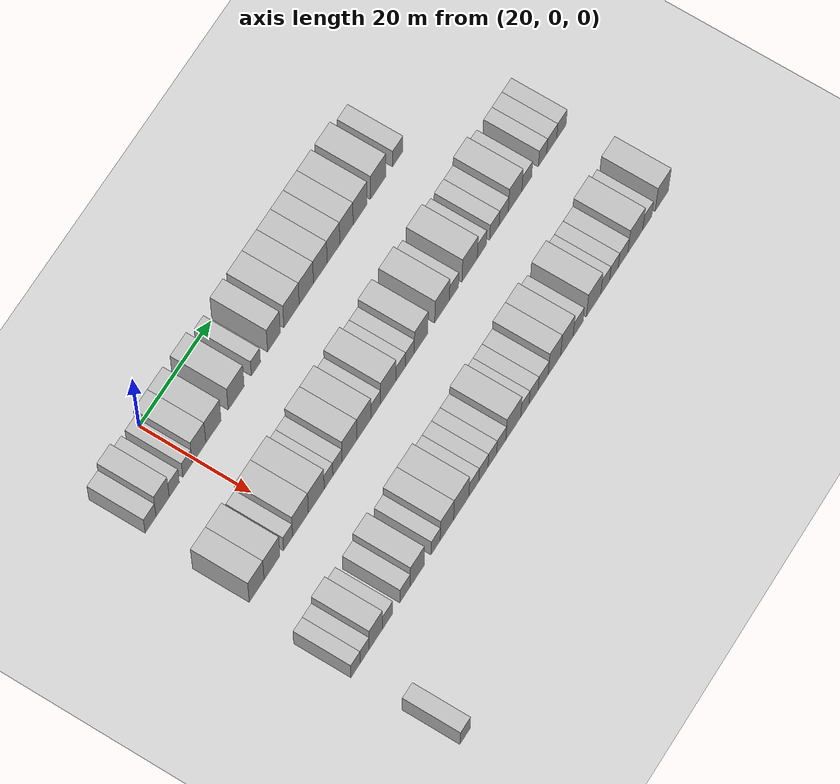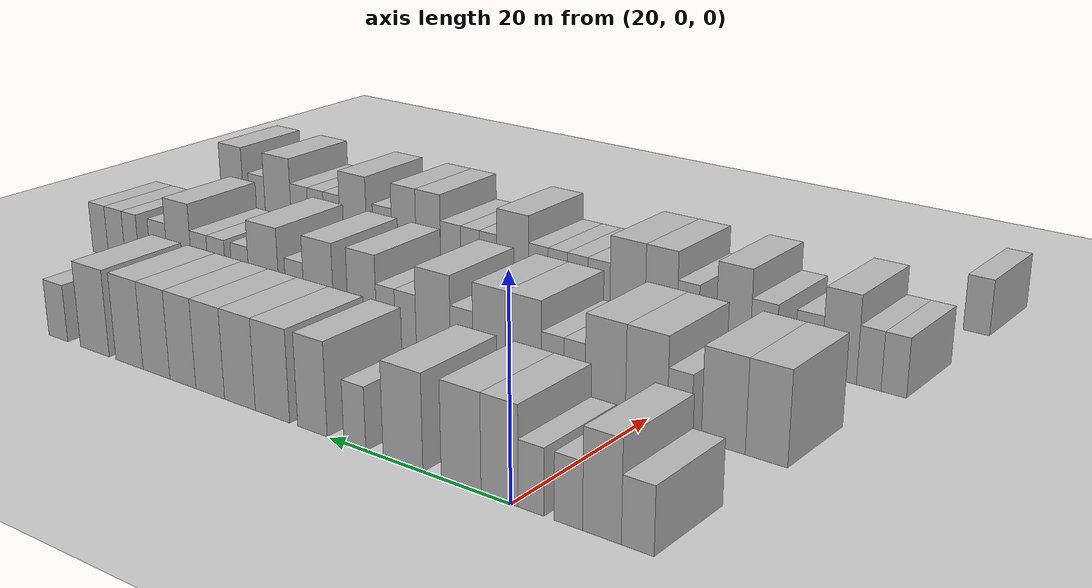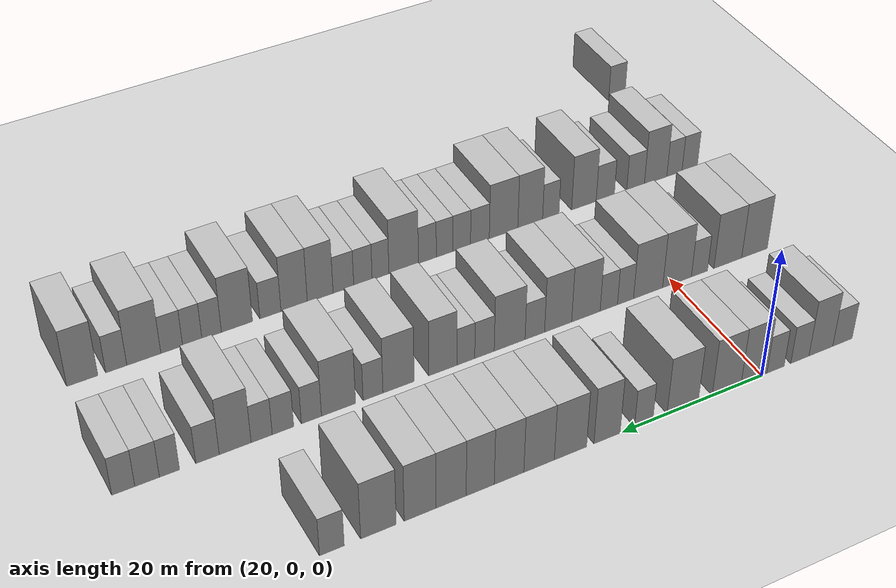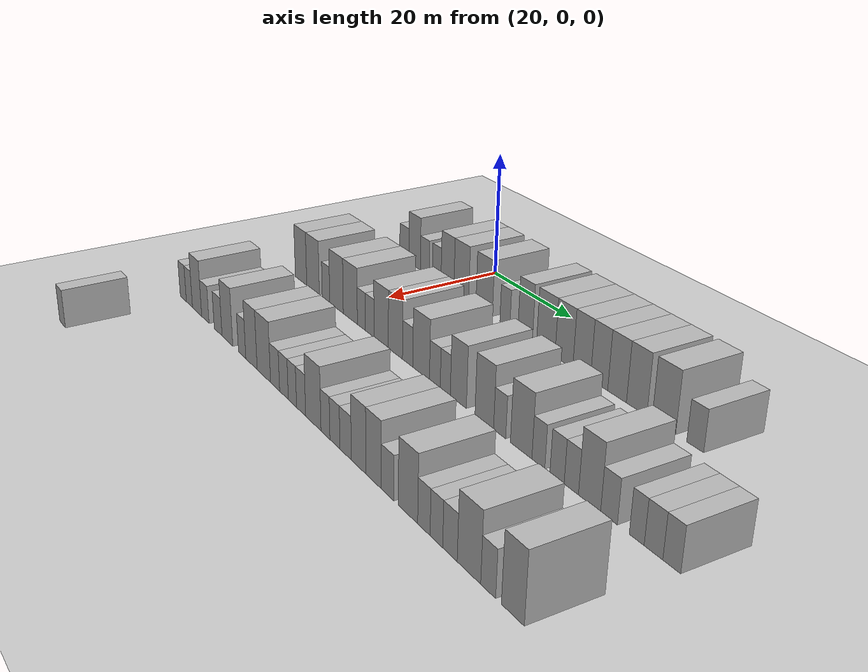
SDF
<sdf version="1.6">
 <world name="default">
  <include><name>ground_plane_1</name><uri>model://HANNAS_ground_plane</uri></include>
  <model name="building_84">
   <static>1</static>
   <pose>25.0000 -12.2381 0 0.000000 0.000000 0.000000</pose>
   <link name="link">
    <pose>0 0 3.00 0 0 0</pose>
    <collision name="collision"><geometry><box><size>10.0000 3.0000 6.0000</size></box></geometry></collision>
    <visual name="visual">
     <cast_shadows>0</cast_shadows>
     <geometry><box><size>10.0000 3.0000 6.0000</size></box></geometry>
     <material>
      <script>
       <uri>model://HANNAS_wall/materials/scripts</uri>
       <uri>model://HANNAS_wall/materials/textures</uri>
       <name>vrc/HANNAS_wall</name>
      </script>
     </material>
    </visual>
   </link>
  </model>
  <model name="building_85">
   <static>1</static>
   <pose>25.0000 -8.9162 0 0.000000 0.000000 0.000000</pose>
   <link name="link">
    <pose>0 0 4.50 0 0 0</pose>
    <collision name="collision"><geometry><box><size>10.0000 3.6439 9.0000</size></box></geometry></collision>
    <visual name="visual">
     <cast_shadows>0</cast_shadows>
     <geometry><box><size>10.0000 3.6439 9.0000</size></box></geometry>
     <material>
      <script>
       <uri>model://HANNAS_wall/materials/scripts</uri>
       <uri>model://HANNAS_wall/materials/textures</uri>
       <name>vrc/HANNAS_wall</name>
      </script>
     </material>
    </visual>
   </link>
  </model>
  <model name="building_86">
   <static>1</static>
   <pose>25.0000 -5.7197 0 0.000000 0.000000 0.000000</pose>
   <link name="link">
    <pose>0 0 3.00 0 0 0</pose>
    <collision name="collision"><geometry><box><size>10.0000 2.7490 6.0000</size></box></geometry></collision>
    <visual name="visual">
     <cast_shadows>0</cast_shadows>
     <geometry><box><size>10.0000 2.7490 6.0000</size></box></geometry>
     <material>
      <script>
       <uri>model://HANNAS_wall/materials/scripts</uri>
       <uri>model://HANNAS_wall/materials/textures</uri>
       <name>vrc/HANNAS_wall</name>
      </script>
     </material>
    </visual>
   </link>
  </model>
  <model name="building_87">
   <static>1</static>
   <pose>25.0000 -2.0507 0 0.000000 0.000000 0.000000</pose>
   <link name="link">
    <pose>0 0 3.00 0 0 0</pose>
    <collision name="collision"><geometry><box><size>10.0000 2.5891 6.0000</size></box></geometry></collision>
    <visual name="visual">
     <cast_shadows>0</cast_shadows>
     <geometry><box><size>10.0000 2.5891 6.0000</size></box></geometry>
     <material>
      <script>
       <uri>model://HANNAS_wall/materials/scripts</uri>
       <uri>model://HANNAS_wall/materials/textures</uri>
       <name>vrc/HANNAS_wall</name>
      </script>
     </material>
    </visual>
   </link>
  </model>
  <model name="building_88">
   <static>1</static>
   <pose>25.0000 1.1462 0 0.000000 0.000000 0.000000</pose>
   <link name="link">
    <pose>0 0 4.50 0 0 0</pose>
    <collision name="collision"><geometry><box><size>10.0000 3.8047 9.0000</size></box></geometry></collision>
    <visual name="visual">
     <cast_shadows>0</cast_shadows>
     <geometry><box><size>10.0000 3.8047 9.0000</size></box></geometry>
     <material>
      <script>
       <uri>model://HANNAS_wall/materials/scripts</uri>
       <uri>model://HANNAS_wall/materials/textures</uri>
       <name>vrc/HANNAS_wall</name>
      </script>
     </material>
    </visual>
   </link>
  </model>
  <model name="building_89">
   <static>1</static>
   <pose>25.0000 5.1682 0 0.000000 0.000000 0.000000</pose>
   <link name="link">
    <pose>0 0 4.50 0 0 0</pose>
    <collision name="collision"><geometry><box><size>10.0000 4.2393 9.0000</size></box></geometry></collision>
    <visual name="visual">
     <cast_shadows>0</cast_shadows>
     <geometry><box><size>10.0000 4.2393 9.0000</size></box></geometry>
     <material>
      <script>
       <uri>model://HANNAS_wall/materials/scripts</uri>
       <uri>model://HANNAS_wall/materials/textures</uri>
       <name>vrc/HANNAS_wall</name>
      </script>
     </material>
    </visual>
   </link>
  </model>
  <model name="building_90">
   <static>1</static>
   <pose>25.0000 11.5206 0 0.000000 0.000000 0.000000</pose>
   <link name="link">
    <pose>0 0 4.50 0 0 0</pose>
    <collision name="collision"><geometry><box><size>10.0000 4.4654 9.0000</size></box></geometry></collision>
    <visual name="visual">
     <cast_shadows>0</cast_shadows>
     <geometry><box><size>10.0000 4.4654 9.0000</size></box></geometry>
     <material>
      <script>
       <uri>model://HANNAS_wall/materials/scripts</uri>
       <uri>model://HANNAS_wall/materials/textures</uri>
       <name>vrc/HANNAS_wall</name>
      </script>
     </material>
    </visual>
   </link>
  </model>
  <model name="building_91">
   <static>1</static>
   <pose>25.0000 17.0446 0 0.000000 0.000000 0.000000</pose>
   <link name="link">
    <pose>0 0 3.00 0 0 0</pose>
    <collision name="collision"><geometry><box><size>10.0000 2.5824 6.0000</size></box></geometry></collision>
    <visual name="visual">
     <cast_shadows>0</cast_shadows>
     <geometry><box><size>10.0000 2.5824 6.0000</size></box></geometry>
     <material>
      <script>
       <uri>model://HANNAS_wall/materials/scripts</uri>
       <uri>model://HANNAS_wall/materials/textures</uri>
       <name>vrc/HANNAS_wall</name>
      </script>
     </material>
    </visual>
   </link>
  </model>
  <model name="building_92">
   <static>1</static>
   <pose>25.0000 22.1387 0 0.000000 0.000000 0.000000</pose>
   <link name="link">
    <pose>0 0 4.50 0 0 0</pose>
    <collision name="collision"><geometry><box><size>10.0000 3.6059 9.0000</size></box></geometry></collision>
    <visual name="visual">
     <cast_shadows>0</cast_shadows>
     <geometry><box><size>10.0000 3.6059 9.0000</size></box></geometry>
     <material>
      <script>
       <uri>model://HANNAS_wall/materials/scripts</uri>
       <uri>model://HANNAS_wall/materials/textures</uri>
       <name>vrc/HANNAS_wall</name>
      </script>
     </material>
    </visual>
   </link>
  </model>
  <model name="building_93">
   <static>1</static>
   <pose>25.0000 27.1247 0 0.000000 0.000000 0.000000</pose>
   <link name="link">
    <pose>0 0 4.50 0 0 0</pose>
    <collision name="collision"><geometry><box><size>10.0000 4.3662 9.0000</size></box></geometry></collision>
    <visual name="visual">
     <cast_shadows>0</cast_shadows>
     <geometry><box><size>10.0000 4.3662 9.0000</size></box></geometry>
     <material>
      <script>
       <uri>model://HANNAS_wall/materials/scripts</uri>
       <uri>model://HANNAS_wall/materials/textures</uri>
       <name>vrc/HANNAS_wall</name>
      </script>
     </material>
    </visual>
   </link>
  </model>
  <model name="building_94">
   <static>1</static>
   <pose>25.0000 31.3392 0 0.000000 0.000000 0.000000</pose>
   <link name="link">
    <pose>0 0 4.50 0 0 0</pose>
    <collision name="collision"><geometry><box><size>10.0000 4.0628 9.0000</size></box></geometry></collision>
    <visual name="visual">
     <cast_shadows>0</cast_shadows>
     <geometry><box><size>10.0000 4.0628 9.0000</size></box></geometry>
     <material>
      <script>
       <uri>model://HANNAS_wall/materials/scripts</uri>
       <uri>model://HANNAS_wall/materials/textures</uri>
       <name>vrc/HANNAS_wall</name>
      </script>
     </material>
    </visual>
   </link>
  </model>
  <model name="building_95">
   <static>1</static>
   <pose>25.0000 35.3141 0 0.000000 0.000000 0.000000</pose>
   <link name="link">
    <pose>0 0 4.50 0 0 0</pose>
    <collision name="collision"><geometry><box><size>10.0000 3.8870 9.0000</size></box></geometry></collision>
    <visual name="visual">
     <cast_shadows>0</cast_shadows>
     <geometry><box><size>10.0000 3.8870 9.0000</size></box></geometry>
     <material>
      <script>
       <uri>model://HANNAS_wall/materials/scripts</uri>
       <uri>model://HANNAS_wall/materials/textures</uri>
       <name>vrc/HANNAS_wall</name>
      </script>
     </material>
    </visual>
   </link>
  </model>
  <model name="building_96">
   <static>1</static>
   <pose>25.0000 39.0773 0 0.000000 0.000000 0.000000</pose>
   <link name="link">
    <pose>0 0 4.50 0 0 0</pose>
    <collision name="collision"><geometry><box><size>10.0000 3.6394 9.0000</size></box></geometry></collision>
    <visual name="visual">
     <cast_shadows>0</cast_shadows>
     <geometry><box><size>10.0000 3.6394 9.0000</size></box></geometry>
     <material>
      <script>
       <uri>model://HANNAS_wall/materials/scripts</uri>
       <uri>model://HANNAS_wall/materials/textures</uri>
       <name>vrc/HANNAS_wall</name>
      </script>
     </material>
    </visual>
   </link>
  </model>
  <model name="building_97">
   <static>1</static>
   <pose>25.0000 42.8184 0 0.000000 0.000000 0.000000</pose>
   <link name="link">
    <pose>0 0 4.50 0 0 0</pose>
    <collision name="collision"><geometry><box><size>10.0000 3.8427 9.0000</size></box></geometry></collision>
    <visual name="visual">
     <cast_shadows>0</cast_shadows>
     <geometry><box><size>10.0000 3.8427 9.0000</size></box></geometry>
     <material>
      <script>
       <uri>model://HANNAS_wall/materials/scripts</uri>
       <uri>model://HANNAS_wall/materials/textures</uri>
       <name>vrc/HANNAS_wall</name>
      </script>
     </material>
    </visual>
   </link>
  </model>
  <model name="building_98">
   <static>1</static>
   <pose>25.0000 46.7473 0 0.000000 0.000000 0.000000</pose>
   <link name="link">
    <pose>0 0 4.50 0 0 0</pose>
    <collision name="collision"><geometry><box><size>10.0000 4.0151 9.0000</size></box></geometry></collision>
    <visual name="visual">
     <cast_shadows>0</cast_shadows>
     <geometry><box><size>10.0000 4.0151 9.0000</size></box></geometry>
     <material>
      <script>
       <uri>model://HANNAS_wall/materials/scripts</uri>
       <uri>model://HANNAS_wall/materials/textures</uri>
       <name>vrc/HANNAS_wall</name>
      </script>
     </material>
    </visual>
   </link>
  </model>
  <model name="building_99">
   <static>1</static>
   <pose>25.0000 51.9541 0 0.000000 0.000000 0.000000</pose>
   <link name="link">
    <pose>0 0 4.50 0 0 0</pose>
    <collision name="collision"><geometry><box><size>10.0000 4.3986 9.0000</size></box></geometry></collision>
    <visual name="visual">
     <cast_shadows>0</cast_shadows>
     <geometry><box><size>10.0000 4.3986 9.0000</size></box></geometry>
     <material>
      <script>
       <uri>model://HANNAS_wall/materials/scripts</uri>
       <uri>model://HANNAS_wall/materials/textures</uri>
       <name>vrc/HANNAS_wall</name>
      </script>
     </material>
    </visual>
   </link>
  </model>
  <model name="building_100">
   <static>1</static>
   <pose>25.0000 57.6530 0 0.000000 0.000000 0.000000</pose>
   <link name="link">
    <pose>0 0 3.00 0 0 0</pose>
    <collision name="collision"><geometry><box><size>10.0000 2.9990 6.0000</size></box></geometry></collision>
    <visual name="visual">
     <cast_shadows>0</cast_shadows>
     <geometry><box><size>10.0000 2.9990 6.0000</size></box></geometry>
     <material>
      <script>
       <uri>model://HANNAS_wall/materials/scripts</uri>
       <uri>model://HANNAS_wall/materials/textures</uri>
       <name>vrc/HANNAS_wall</name>
      </script>
     </material>
    </visual>
   </link>
  </model>
  <model name="building_244">
   <static>1</static>
   <pose>44.0000 -12.6352 0 0.000000 0.000000 0.000000</pose>
   <link name="link">
    <pose>0 0 4.50 0 0 0</pose>
    <collision name="collision"><geometry><box><size>10.0000 4.1070 9.0000</size></box></geometry></collision>
    <visual name="visual">
     <cast_shadows>0</cast_shadows>
     <geometry><box><size>10.0000 4.1070 9.0000</size></box></geometry>
     <material>
      <script>
       <uri>model://HANNAS_wall/materials/scripts</uri>
       <uri>model://HANNAS_wall/materials/textures</uri>
       <name>vrc/HANNAS_wall</name>
      </script>
     </material>
    </visual>
   </link>
  </model>
  <model name="building_245">
   <static>1</static>
   <pose>44.0000 -8.3828 0 0.000000 0.000000 0.000000</pose>
   <link name="link">
    <pose>0 0 4.50 0 0 0</pose>
    <collision name="collision"><geometry><box><size>10.0000 4.3976 9.0000</size></box></geometry></collision>
    <visual name="visual">
     <cast_shadows>0</cast_shadows>
     <geometry><box><size>10.0000 4.3976 9.0000</size></box></geometry>
     <material>
      <script>
       <uri>model://HANNAS_wall/materials/scripts</uri>
       <uri>model://HANNAS_wall/materials/textures</uri>
       <name>vrc/HANNAS_wall</name>
      </script>
     </material>
    </visual>
   </link>
  </model>
  <model name="building_246">
   <static>1</static>
   <pose>44.0000 -3.9206 0 0.000000 0.000000 0.000000</pose>
   <link name="link">
    <pose>0 0 3.00 0 0 0</pose>
    <collision name="collision"><geometry><box><size>10.0000 2.5268 6.0000</size></box></geometry></collision>
    <visual name="visual">
     <cast_shadows>0</cast_shadows>
     <geometry><box><size>10.0000 2.5268 6.0000</size></box></geometry>
     <material>
      <script>
       <uri>model://HANNAS_wall/materials/scripts</uri>
       <uri>model://HANNAS_wall/materials/textures</uri>
       <name>vrc/HANNAS_wall</name>
      </script>
     </material>
    </visual>
   </link>
  </model>
  <model name="building_247">
   <static>1</static>
   <pose>44.0000 -0.4420 0 0.000000 0.000000 0.000000</pose>
   <link name="link">
    <pose>0 0 4.50 0 0 0</pose>
    <collision name="collision"><geometry><box><size>10.0000 4.4305 9.0000</size></box></geometry></collision>
    <visual name="visual">
     <cast_shadows>0</cast_shadows>
     <geometry><box><size>10.0000 4.4305 9.0000</size></box></geometry>
     <material>
      <script>
       <uri>model://HANNAS_wall/materials/scripts</uri>
       <uri>model://HANNAS_wall/materials/textures</uri>
       <name>vrc/HANNAS_wall</name>
      </script>
     </material>
    </visual>
   </link>
  </model>
  <model name="building_248">
   <static>1</static>
   <pose>44.0000 3.9941 0 0.000000 0.000000 0.000000</pose>
   <link name="link">
    <pose>0 0 4.50 0 0 0</pose>
    <collision name="collision"><geometry><box><size>10.0000 4.4417 9.0000</size></box></geometry></collision>
    <visual name="visual">
     <cast_shadows>0</cast_shadows>
     <geometry><box><size>10.0000 4.4417 9.0000</size></box></geometry>
     <material>
      <script>
       <uri>model://HANNAS_wall/materials/scripts</uri>
       <uri>model://HANNAS_wall/materials/textures</uri>
       <name>vrc/HANNAS_wall</name>
      </script>
     </material>
    </visual>
   </link>
  </model>
  <model name="building_249">
   <static>1</static>
   <pose>44.0000 7.4224 0 0.000000 0.000000 0.000000</pose>
   <link name="link">
    <pose>0 0 3.00 0 0 0</pose>
    <collision name="collision"><geometry><box><size>10.0000 2.4148 6.0000</size></box></geometry></collision>
    <visual name="visual">
     <cast_shadows>0</cast_shadows>
     <geometry><box><size>10.0000 2.4148 6.0000</size></box></geometry>
     <material>
      <script>
       <uri>model://HANNAS_wall/materials/scripts</uri>
       <uri>model://HANNAS_wall/materials/textures</uri>
       <name>vrc/HANNAS_wall</name>
      </script>
     </material>
    </visual>
   </link>
  </model>
  <model name="building_250">
   <static>1</static>
   <pose>44.0000 9.9266 0 0.000000 0.000000 0.000000</pose>
   <link name="link">
    <pose>0 0 3.00 0 0 0</pose>
    <collision name="collision"><geometry><box><size>10.0000 2.5937 6.0000</size></box></geometry></collision>
    <visual name="visual">
     <cast_shadows>0</cast_shadows>
     <geometry><box><size>10.0000 2.5937 6.0000</size></box></geometry>
     <material>
      <script>
       <uri>model://HANNAS_wall/materials/scripts</uri>
       <uri>model://HANNAS_wall/materials/textures</uri>
       <name>vrc/HANNAS_wall</name>
      </script>
     </material>
    </visual>
   </link>
  </model>
  <model name="building_251">
   <static>1</static>
   <pose>44.0000 13.3221 0 0.000000 0.000000 0.000000</pose>
   <link name="link">
    <pose>0 0 4.50 0 0 0</pose>
    <collision name="collision"><geometry><box><size>10.0000 4.1971 9.0000</size></box></geometry></collision>
    <visual name="visual">
     <cast_shadows>0</cast_shadows>
     <geometry><box><size>10.0000 4.1971 9.0000</size></box></geometry>
     <material>
      <script>
       <uri>model://HANNAS_wall/materials/scripts</uri>
       <uri>model://HANNAS_wall/materials/textures</uri>
       <name>vrc/HANNAS_wall</name>
      </script>
     </material>
    </visual>
   </link>
  </model>
  <model name="building_252">
   <static>1</static>
   <pose>44.0000 17.3969 0 0.000000 0.000000 0.000000</pose>
   <link name="link">
    <pose>0 0 4.50 0 0 0</pose>
    <collision name="collision"><geometry><box><size>10.0000 3.9526 9.0000</size></box></geometry></collision>
    <visual name="visual">
     <cast_shadows>0</cast_shadows>
     <geometry><box><size>10.0000 3.9526 9.0000</size></box></geometry>
     <material>
      <script>
       <uri>model://HANNAS_wall/materials/scripts</uri>
       <uri>model://HANNAS_wall/materials/textures</uri>
       <name>vrc/HANNAS_wall</name>
      </script>
     </material>
    </visual>
   </link>
  </model>
  <model name="building_253">
   <static>1</static>
   <pose>44.0000 20.7766 0 0.000000 0.000000 0.000000</pose>
   <link name="link">
    <pose>0 0 3.00 0 0 0</pose>
    <collision name="collision"><geometry><box><size>10.0000 2.8067 6.0000</size></box></geometry></collision>
    <visual name="visual">
     <cast_shadows>0</cast_shadows>
     <geometry><box><size>10.0000 2.8067 6.0000</size></box></geometry>
     <material>
      <script>
       <uri>model://HANNAS_wall/materials/scripts</uri>
       <uri>model://HANNAS_wall/materials/textures</uri>
       <name>vrc/HANNAS_wall</name>
      </script>
     </material>
    </visual>
   </link>
  </model>
  <model name="building_254">
   <static>1</static>
   <pose>44.0000 24.3765 0 0.000000 0.000000 0.000000</pose>
   <link name="link">
    <pose>0 0 4.50 0 0 0</pose>
    <collision name="collision"><geometry><box><size>10.0000 4.3931 9.0000</size></box></geometry></collision>
    <visual name="visual">
     <cast_shadows>0</cast_shadows>
     <geometry><box><size>10.0000 4.3931 9.0000</size></box></geometry>
     <material>
      <script>
       <uri>model://HANNAS_wall/materials/scripts</uri>
       <uri>model://HANNAS_wall/materials/textures</uri>
       <name>vrc/HANNAS_wall</name>
      </script>
     </material>
    </visual>
   </link>
  </model>
  <model name="building_255">
   <static>1</static>
   <pose>44.0000 27.9406 0 0.000000 0.000000 0.000000</pose>
   <link name="link">
    <pose>0 0 3.00 0 0 0</pose>
    <collision name="collision"><geometry><box><size>10.0000 2.7352 6.0000</size></box></geometry></collision>
    <visual name="visual">
     <cast_shadows>0</cast_shadows>
     <geometry><box><size>10.0000 2.7352 6.0000</size></box></geometry>
     <material>
      <script>
       <uri>model://HANNAS_wall/materials/scripts</uri>
       <uri>model://HANNAS_wall/materials/textures</uri>
       <name>vrc/HANNAS_wall</name>
      </script>
     </material>
    </visual>
   </link>
  </model>
  <model name="building_256">
   <static>1</static>
   <pose>44.0000 30.5505 0 0.000000 0.000000 0.000000</pose>
   <link name="link">
    <pose>0 0 3.00 0 0 0</pose>
    <collision name="collision"><geometry><box><size>10.0000 2.4846 6.0000</size></box></geometry></collision>
    <visual name="visual">
     <cast_shadows>0</cast_shadows>
     <geometry><box><size>10.0000 2.4846 6.0000</size></box></geometry>
     <material>
      <script>
       <uri>model://HANNAS_wall/materials/scripts</uri>
       <uri>model://HANNAS_wall/materials/textures</uri>
       <name>vrc/HANNAS_wall</name>
      </script>
     </material>
    </visual>
   </link>
  </model>
  <model name="building_257">
   <static>1</static>
   <pose>44.0000 33.7328 0 0.000000 0.000000 0.000000</pose>
   <link name="link">
    <pose>0 0 4.50 0 0 0</pose>
    <collision name="collision"><geometry><box><size>10.0000 3.8801 9.0000</size></box></geometry></collision>
    <visual name="visual">
     <cast_shadows>0</cast_shadows>
     <geometry><box><size>10.0000 3.8801 9.0000</size></box></geometry>
     <material>
      <script>
       <uri>model://HANNAS_wall/materials/scripts</uri>
       <uri>model://HANNAS_wall/materials/textures</uri>
       <name>vrc/HANNAS_wall</name>
      </script>
     </material>
    </visual>
   </link>
  </model>
  <model name="building_258">
   <static>1</static>
   <pose>44.0000 39.7810 0 0.000000 0.000000 0.000000</pose>
   <link name="link">
    <pose>0 0 4.50 0 0 0</pose>
    <collision name="collision"><geometry><box><size>10.0000 4.2163 9.0000</size></box></geometry></collision>
    <visual name="visual">
     <cast_shadows>0</cast_shadows>
     <geometry><box><size>10.0000 4.2163 9.0000</size></box></geometry>
     <material>
      <script>
       <uri>model://HANNAS_wall/materials/scripts</uri>
       <uri>model://HANNAS_wall/materials/textures</uri>
       <name>vrc/HANNAS_wall</name>
      </script>
     </material>
    </visual>
   </link>
  </model>
  <model name="building_259">
   <static>1</static>
   <pose>44.0000 43.2154 0 0.000000 0.000000 0.000000</pose>
   <link name="link">
    <pose>0 0 3.00 0 0 0</pose>
    <collision name="collision"><geometry><box><size>10.0000 2.6526 6.0000</size></box></geometry></collision>
    <visual name="visual">
     <cast_shadows>0</cast_shadows>
     <geometry><box><size>10.0000 2.6526 6.0000</size></box></geometry>
     <material>
      <script>
       <uri>model://HANNAS_wall/materials/scripts</uri>
       <uri>model://HANNAS_wall/materials/textures</uri>
       <name>vrc/HANNAS_wall</name>
      </script>
     </material>
    </visual>
   </link>
  </model>
  <model name="building_260">
   <static>1</static>
   <pose>44.0000 47.7839 0 0.000000 0.000000 0.000000</pose>
   <link name="link">
    <pose>0 0 4.50 0 0 0</pose>
    <collision name="collision"><geometry><box><size>10.0000 4.4843 9.0000</size></box></geometry></collision>
    <visual name="visual">
     <cast_shadows>0</cast_shadows>
     <geometry><box><size>10.0000 4.4843 9.0000</size></box></geometry>
     <material>
      <script>
       <uri>model://HANNAS_wall/materials/scripts</uri>
       <uri>model://HANNAS_wall/materials/textures</uri>
       <name>vrc/HANNAS_wall</name>
      </script>
     </material>
    </visual>
   </link>
  </model>
  <model name="building_261">
   <static>1</static>
   <pose>44.0000 51.3295 0 0.000000 0.000000 0.000000</pose>
   <link name="link">
    <pose>0 0 3.00 0 0 0</pose>
    <collision name="collision"><geometry><box><size>10.0000 2.6069 6.0000</size></box></geometry></collision>
    <visual name="visual">
     <cast_shadows>0</cast_shadows>
     <geometry><box><size>10.0000 2.6069 6.0000</size></box></geometry>
     <material>
      <script>
       <uri>model://HANNAS_wall/materials/scripts</uri>
       <uri>model://HANNAS_wall/materials/textures</uri>
       <name>vrc/HANNAS_wall</name>
      </script>
     </material>
    </visual>
   </link>
  </model>
  <model name="building_262">
   <static>1</static>
   <pose>44.0000 55.0069 0 0.000000 0.000000 0.000000</pose>
   <link name="link">
    <pose>0 0 3.00 0 0 0</pose>
    <collision name="collision"><geometry><box><size>10.0000 2.7478 6.0000</size></box></geometry></collision>
    <visual name="visual">
     <cast_shadows>0</cast_shadows>
     <geometry><box><size>10.0000 2.7478 6.0000</size></box></geometry>
     <material>
      <script>
       <uri>model://HANNAS_wall/materials/scripts</uri>
       <uri>model://HANNAS_wall/materials/textures</uri>
       <name>vrc/HANNAS_wall</name>
      </script>
     </material>
    </visual>
   </link>
  </model>
  <model name="building_263">
   <static>1</static>
   <pose>44.0000 57.7232 0 0.000000 0.000000 0.000000</pose>
   <link name="link">
    <pose>0 0 3.00 0 0 0</pose>
    <collision name="collision"><geometry><box><size>10.0000 2.6848 6.0000</size></box></geometry></collision>
    <visual name="visual">
     <cast_shadows>0</cast_shadows>
     <geometry><box><size>10.0000 2.6848 6.0000</size></box></geometry>
     <material>
      <script>
       <uri>model://HANNAS_wall/materials/scripts</uri>
       <uri>model://HANNAS_wall/materials/textures</uri>
       <name>vrc/HANNAS_wall</name>
      </script>
     </material>
    </visual>
   </link>
  </model>
  <model name="building_264">
   <static>1</static>
   <pose>44.0000 61.0655 0 0.000000 0.000000 0.000000</pose>
   <link name="link">
    <pose>0 0 4.50 0 0 0</pose>
    <collision name="collision"><geometry><box><size>10.0000 3.9998 9.0000</size></box></geometry></collision>
    <visual name="visual">
     <cast_shadows>0</cast_shadows>
     <geometry><box><size>10.0000 3.9998 9.0000</size></box></geometry>
     <material>
      <script>
       <uri>model://HANNAS_wall/materials/scripts</uri>
       <uri>model://HANNAS_wall/materials/textures</uri>
       <name>vrc/HANNAS_wall</name>
      </script>
     </material>
    </visual>
   </link>
  </model>
  <model name="building_265">
   <static>1</static>
   <pose>44.0000 64.5210 0 0.000000 0.000000 0.000000</pose>
   <link name="link">
    <pose>0 0 3.00 0 0 0</pose>
    <collision name="collision"><geometry><box><size>10.0000 2.9110 6.0000</size></box></geometry></collision>
    <visual name="visual">
     <cast_shadows>0</cast_shadows>
     <geometry><box><size>10.0000 2.9110 6.0000</size></box></geometry>
     <material>
      <script>
       <uri>model://HANNAS_wall/materials/scripts</uri>
       <uri>model://HANNAS_wall/materials/textures</uri>
       <name>vrc/HANNAS_wall</name>
      </script>
     </material>
    </visual>
   </link>
  </model>
  <model name="building_266">
   <static>1</static>
   <pose>44.0000 69.2014 0 0.000000 0.000000 0.000000</pose>
   <link name="link">
    <pose>0 0 3.00 0 0 0</pose>
    <collision name="collision"><geometry><box><size>10.0000 2.4499 6.0000</size></box></geometry></collision>
    <visual name="visual">
     <cast_shadows>0</cast_shadows>
     <geometry><box><size>10.0000 2.4499 6.0000</size></box></geometry>
     <material>
      <script>
       <uri>model://HANNAS_wall/materials/scripts</uri>
       <uri>model://HANNAS_wall/materials/textures</uri>
       <name>vrc/HANNAS_wall</name>
      </script>
     </material>
    </visual>
   </link>
  </model>
  <model name="building_267">
   <static>1</static>
   <pose>44.0000 71.9105 0 0.000000 0.000000 0.000000</pose>
   <link name="link">
    <pose>0 0 3.00 0 0 0</pose>
    <collision name="collision"><geometry><box><size>10.0000 2.9683 6.0000</size></box></geometry></collision>
    <visual name="visual">
     <cast_shadows>0</cast_shadows>
     <geometry><box><size>10.0000 2.9683 6.0000</size></box></geometry>
     <material>
      <script>
       <uri>model://HANNAS_wall/materials/scripts</uri>
       <uri>model://HANNAS_wall/materials/textures</uri>
       <name>vrc/HANNAS_wall</name>
      </script>
     </material>
    </visual>
   </link>
  </model>
  <model name="building_268">
   <static>1</static>
   <pose>44.0000 74.7761 0 0.000000 0.000000 0.000000</pose>
   <link name="link">
    <pose>0 0 3.00 0 0 0</pose>
    <collision name="collision"><geometry><box><size>10.0000 2.7629 6.0000</size></box></geometry></collision>
    <visual name="visual">
     <cast_shadows>0</cast_shadows>
     <geometry><box><size>10.0000 2.7629 6.0000</size></box></geometry>
     <material>
      <script>
       <uri>model://HANNAS_wall/materials/scripts</uri>
       <uri>model://HANNAS_wall/materials/textures</uri>
       <name>vrc/HANNAS_wall</name>
      </script>
     </material>
    </visual>
   </link>
  </model>
  <model name="building_426">
   <static>1</static>
   <pose>63.0000 -15.3233 0 0.000000 0.000000 0.000000</pose>
   <link name="link">
    <pose>0 0 3.00 0 0 0</pose>
    <collision name="collision"><geometry><box><size>10.0000 2.5585 6.0000</size></box></geometry></collision>
    <visual name="visual">
     <cast_shadows>0</cast_shadows>
     <geometry><box><size>10.0000 2.5585 6.0000</size></box></geometry>
     <material>
      <script>
       <uri>model://HANNAS_wall/materials/scripts</uri>
       <uri>model://HANNAS_wall/materials/textures</uri>
       <name>vrc/HANNAS_wall</name>
      </script>
     </material>
    </visual>
   </link>
  </model>
  <model name="building_427">
   <static>1</static>
   <pose>63.0000 -12.7820 0 0.000000 0.000000 0.000000</pose>
   <link name="link">
    <pose>0 0 3.00 0 0 0</pose>
    <collision name="collision"><geometry><box><size>10.0000 2.5239 6.0000</size></box></geometry></collision>
    <visual name="visual">
     <cast_shadows>0</cast_shadows>
     <geometry><box><size>10.0000 2.5239 6.0000</size></box></geometry>
     <material>
      <script>
       <uri>model://HANNAS_wall/materials/scripts</uri>
       <uri>model://HANNAS_wall/materials/textures</uri>
       <name>vrc/HANNAS_wall</name>
      </script>
     </material>
    </visual>
   </link>
  </model>
  <model name="building_428">
   <static>1</static>
   <pose>63.0000 -9.6715 0 0.000000 0.000000 0.000000</pose>
   <link name="link">
    <pose>0 0 4.50 0 0 0</pose>
    <collision name="collision"><geometry><box><size>10.0000 3.6972 9.0000</size></box></geometry></collision>
    <visual name="visual">
     <cast_shadows>0</cast_shadows>
     <geometry><box><size>10.0000 3.6972 9.0000</size></box></geometry>
     <material>
      <script>
       <uri>model://HANNAS_wall/materials/scripts</uri>
       <uri>model://HANNAS_wall/materials/textures</uri>
       <name>vrc/HANNAS_wall</name>
      </script>
     </material>
    </visual>
   </link>
  </model>
  <model name="building_429">
   <static>1</static>
   <pose>63.0000 -6.3809 0 0.000000 0.000000 0.000000</pose>
   <link name="link">
    <pose>0 0 3.00 0 0 0</pose>
    <collision name="collision"><geometry><box><size>10.0000 2.8840 6.0000</size></box></geometry></collision>
    <visual name="visual">
     <cast_shadows>0</cast_shadows>
     <geometry><box><size>10.0000 2.8840 6.0000</size></box></geometry>
     <material>
      <script>
       <uri>model://HANNAS_wall/materials/scripts</uri>
       <uri>model://HANNAS_wall/materials/textures</uri>
       <name>vrc/HANNAS_wall</name>
      </script>
     </material>
    </visual>
   </link>
  </model>
  <model name="building_430">
   <static>1</static>
   <pose>63.0000 -1.4845 0 0.000000 0.000000 0.000000</pose>
   <link name="link">
    <pose>0 0 3.00 0 0 0</pose>
    <collision name="collision"><geometry><box><size>10.0000 2.9087 6.0000</size></box></geometry></collision>
    <visual name="visual">
     <cast_shadows>0</cast_shadows>
     <geometry><box><size>10.0000 2.9087 6.0000</size></box></geometry>
     <material>
      <script>
       <uri>model://HANNAS_wall/materials/scripts</uri>
       <uri>model://HANNAS_wall/materials/textures</uri>
       <name>vrc/HANNAS_wall</name>
      </script>
     </material>
    </visual>
   </link>
  </model>
  <model name="building_431">
   <static>1</static>
   <pose>63.0000 1.9243 0 0.000000 0.000000 0.000000</pose>
   <link name="link">
    <pose>0 0 4.50 0 0 0</pose>
    <collision name="collision"><geometry><box><size>10.0000 3.9090 9.0000</size></box></geometry></collision>
    <visual name="visual">
     <cast_shadows>0</cast_shadows>
     <geometry><box><size>10.0000 3.9090 9.0000</size></box></geometry>
     <material>
      <script>
       <uri>model://HANNAS_wall/materials/scripts</uri>
       <uri>model://HANNAS_wall/materials/textures</uri>
       <name>vrc/HANNAS_wall</name>
      </script>
     </material>
    </visual>
   </link>
  </model>
  <model name="building_432">
   <static>1</static>
   <pose>63.0000 7.1593 0 0.000000 0.000000 0.000000</pose>
   <link name="link">
    <pose>0 0 3.00 0 0 0</pose>
    <collision name="collision"><geometry><box><size>10.0000 2.5609 6.0000</size></box></geometry></collision>
    <visual name="visual">
     <cast_shadows>0</cast_shadows>
     <geometry><box><size>10.0000 2.5609 6.0000</size></box></geometry>
     <material>
      <script>
       <uri>model://HANNAS_wall/materials/scripts</uri>
       <uri>model://HANNAS_wall/materials/textures</uri>
       <name>vrc/HANNAS_wall</name>
      </script>
     </material>
    </visual>
   </link>
  </model>
  <model name="building_433">
   <static>1</static>
   <pose>63.0000 10.3559 0 0.000000 0.000000 0.000000</pose>
   <link name="link">
    <pose>0 0 4.50 0 0 0</pose>
    <collision name="collision"><geometry><box><size>10.0000 3.8323 9.0000</size></box></geometry></collision>
    <visual name="visual">
     <cast_shadows>0</cast_shadows>
     <geometry><box><size>10.0000 3.8323 9.0000</size></box></geometry>
     <material>
      <script>
       <uri>model://HANNAS_wall/materials/scripts</uri>
       <uri>model://HANNAS_wall/materials/textures</uri>
       <name>vrc/HANNAS_wall</name>
      </script>
     </material>
    </visual>
   </link>
  </model>
  <model name="building_434">
   <static>1</static>
   <pose>63.0000 14.4499 0 0.000000 0.000000 0.000000</pose>
   <link name="link">
    <pose>0 0 4.50 0 0 0</pose>
    <collision name="collision"><geometry><box><size>10.0000 4.3558 9.0000</size></box></geometry></collision>
    <visual name="visual">
     <cast_shadows>0</cast_shadows>
     <geometry><box><size>10.0000 4.3558 9.0000</size></box></geometry>
     <material>
      <script>
       <uri>model://HANNAS_wall/materials/scripts</uri>
       <uri>model://HANNAS_wall/materials/textures</uri>
       <name>vrc/HANNAS_wall</name>
      </script>
     </material>
    </visual>
   </link>
  </model>
  <model name="building_435">
   <static>1</static>
   <pose>63.0000 18.0477 0 0.000000 0.000000 0.000000</pose>
   <link name="link">
    <pose>0 0 3.00 0 0 0</pose>
    <collision name="collision"><geometry><box><size>10.0000 2.8398 6.0000</size></box></geometry></collision>
    <visual name="visual">
     <cast_shadows>0</cast_shadows>
     <geometry><box><size>10.0000 2.8398 6.0000</size></box></geometry>
     <material>
      <script>
       <uri>model://HANNAS_wall/materials/scripts</uri>
       <uri>model://HANNAS_wall/materials/textures</uri>
       <name>vrc/HANNAS_wall</name>
      </script>
     </material>
    </visual>
   </link>
  </model>
  <model name="building_436">
   <static>1</static>
   <pose>63.0000 20.7925 0 0.000000 0.000000 0.000000</pose>
   <link name="link">
    <pose>0 0 3.00 0 0 0</pose>
    <collision name="collision"><geometry><box><size>10.0000 2.6497 6.0000</size></box></geometry></collision>
    <visual name="visual">
     <cast_shadows>0</cast_shadows>
     <geometry><box><size>10.0000 2.6497 6.0000</size></box></geometry>
     <material>
      <script>
       <uri>model://HANNAS_wall/materials/scripts</uri>
       <uri>model://HANNAS_wall/materials/textures</uri>
       <name>vrc/HANNAS_wall</name>
      </script>
     </material>
    </visual>
   </link>
  </model>
  <model name="building_437">
   <static>1</static>
   <pose>63.0000 23.3493 0 0.000000 0.000000 0.000000</pose>
   <link name="link">
    <pose>0 0 3.00 0 0 0</pose>
    <collision name="collision"><geometry><box><size>10.0000 2.4640 6.0000</size></box></geometry></collision>
    <visual name="visual">
     <cast_shadows>0</cast_shadows>
     <geometry><box><size>10.0000 2.4640 6.0000</size></box></geometry>
     <material>
      <script>
       <uri>model://HANNAS_wall/materials/scripts</uri>
       <uri>model://HANNAS_wall/materials/textures</uri>
       <name>vrc/HANNAS_wall</name>
      </script>
     </material>
    </visual>
   </link>
  </model>
  <model name="building_438">
   <static>1</static>
   <pose>63.0000 25.8976 0 0.000000 0.000000 0.000000</pose>
   <link name="link">
    <pose>0 0 3.00 0 0 0</pose>
    <collision name="collision"><geometry><box><size>10.0000 2.6326 6.0000</size></box></geometry></collision>
    <visual name="visual">
     <cast_shadows>0</cast_shadows>
     <geometry><box><size>10.0000 2.6326 6.0000</size></box></geometry>
     <material>
      <script>
       <uri>model://HANNAS_wall/materials/scripts</uri>
       <uri>model://HANNAS_wall/materials/textures</uri>
       <name>vrc/HANNAS_wall</name>
      </script>
     </material>
    </visual>
   </link>
  </model>
  <model name="building_439">
   <static>1</static>
   <pose>63.0000 29.3674 0 0.000000 0.000000 0.000000</pose>
   <link name="link">
    <pose>0 0 4.50 0 0 0</pose>
    <collision name="collision"><geometry><box><size>10.0000 4.3069 9.0000</size></box></geometry></collision>
    <visual name="visual">
     <cast_shadows>0</cast_shadows>
     <geometry><box><size>10.0000 4.3069 9.0000</size></box></geometry>
     <material>
      <script>
       <uri>model://HANNAS_wall/materials/scripts</uri>
       <uri>model://HANNAS_wall/materials/textures</uri>
       <name>vrc/HANNAS_wall</name>
      </script>
     </material>
    </visual>
   </link>
  </model>
  <model name="building_440">
   <static>1</static>
   <pose>63.0000 32.7330 0 0.000000 0.000000 0.000000</pose>
   <link name="link">
    <pose>0 0 3.00 0 0 0</pose>
    <collision name="collision"><geometry><box><size>10.0000 2.4243 6.0000</size></box></geometry></collision>
    <visual name="visual">
     <cast_shadows>0</cast_shadows>
     <geometry><box><size>10.0000 2.4243 6.0000</size></box></geometry>
     <material>
      <script>
       <uri>model://HANNAS_wall/materials/scripts</uri>
       <uri>model://HANNAS_wall/materials/textures</uri>
       <name>vrc/HANNAS_wall</name>
      </script>
     </material>
    </visual>
   </link>
  </model>
  <model name="building_441">
   <static>1</static>
   <pose>63.0000 35.2612 0 0.000000 0.000000 0.000000</pose>
   <link name="link">
    <pose>0 0 3.00 0 0 0</pose>
    <collision name="collision"><geometry><box><size>10.0000 2.6322 6.0000</size></box></geometry></collision>
    <visual name="visual">
     <cast_shadows>0</cast_shadows>
     <geometry><box><size>10.0000 2.6322 6.0000</size></box></geometry>
     <material>
      <script>
       <uri>model://HANNAS_wall/materials/scripts</uri>
       <uri>model://HANNAS_wall/materials/textures</uri>
       <name>vrc/HANNAS_wall</name>
      </script>
     </material>
    </visual>
   </link>
  </model>
  <model name="building_442">
   <static>1</static>
   <pose>63.0000 38.0422 0 0.000000 0.000000 0.000000</pose>
   <link name="link">
    <pose>0 0 3.00 0 0 0</pose>
    <collision name="collision"><geometry><box><size>10.0000 2.9298 6.0000</size></box></geometry></collision>
    <visual name="visual">
     <cast_shadows>0</cast_shadows>
     <geometry><box><size>10.0000 2.9298 6.0000</size></box></geometry>
     <material>
      <script>
       <uri>model://HANNAS_wall/materials/scripts</uri>
       <uri>model://HANNAS_wall/materials/textures</uri>
       <name>vrc/HANNAS_wall</name>
      </script>
     </material>
    </visual>
   </link>
  </model>
  <model name="building_443">
   <static>1</static>
   <pose>63.0000 41.3149 0 0.000000 0.000000 0.000000</pose>
   <link name="link">
    <pose>0 0 4.50 0 0 0</pose>
    <collision name="collision"><geometry><box><size>10.0000 3.6156 9.0000</size></box></geometry></collision>
    <visual name="visual">
     <cast_shadows>0</cast_shadows>
     <geometry><box><size>10.0000 3.6156 9.0000</size></box></geometry>
     <material>
      <script>
       <uri>model://HANNAS_wall/materials/scripts</uri>
       <uri>model://HANNAS_wall/materials/textures</uri>
       <name>vrc/HANNAS_wall</name>
      </script>
     </material>
    </visual>
   </link>
  </model>
  <model name="building_444">
   <static>1</static>
   <pose>63.0000 44.9523 0 0.000000 0.000000 0.000000</pose>
   <link name="link">
    <pose>0 0 4.50 0 0 0</pose>
    <collision name="collision"><geometry><box><size>10.0000 3.6591 9.0000</size></box></geometry></collision>
    <visual name="visual">
     <cast_shadows>0</cast_shadows>
     <geometry><box><size>10.0000 3.6591 9.0000</size></box></geometry>
     <material>
      <script>
       <uri>model://HANNAS_wall/materials/scripts</uri>
       <uri>model://HANNAS_wall/materials/textures</uri>
       <name>vrc/HANNAS_wall</name>
      </script>
     </material>
    </visual>
   </link>
  </model>
  <model name="building_445">
   <static>1</static>
   <pose>63.0000 48.2326 0 0.000000 0.000000 0.000000</pose>
   <link name="link">
    <pose>0 0 3.00 0 0 0</pose>
    <collision name="collision"><geometry><box><size>10.0000 2.9016 6.0000</size></box></geometry></collision>
    <visual name="visual">
     <cast_shadows>0</cast_shadows>
     <geometry><box><size>10.0000 2.9016 6.0000</size></box></geometry>
     <material>
      <script>
       <uri>model://HANNAS_wall/materials/scripts</uri>
       <uri>model://HANNAS_wall/materials/textures</uri>
       <name>vrc/HANNAS_wall</name>
      </script>
     </material>
    </visual>
   </link>
  </model>
  <model name="building_446">
   <static>1</static>
   <pose>63.0000 52.7912 0 0.000000 0.000000 0.000000</pose>
   <link name="link">
    <pose>0 0 4.50 0 0 0</pose>
    <collision name="collision"><geometry><box><size>10.0000 4.2156 9.0000</size></box></geometry></collision>
    <visual name="visual">
     <cast_shadows>0</cast_shadows>
     <geometry><box><size>10.0000 4.2156 9.0000</size></box></geometry>
     <material>
      <script>
       <uri>model://HANNAS_wall/materials/scripts</uri>
       <uri>model://HANNAS_wall/materials/textures</uri>
       <name>vrc/HANNAS_wall</name>
      </script>
     </material>
    </visual>
   </link>
  </model>
  <model name="building_447">
   <static>1</static>
   <pose>63.0000 56.2046 0 0.000000 0.000000 0.000000</pose>
   <link name="link">
    <pose>0 0 3.00 0 0 0</pose>
    <collision name="collision"><geometry><box><size>10.0000 2.6113 6.0000</size></box></geometry></collision>
    <visual name="visual">
     <cast_shadows>0</cast_shadows>
     <geometry><box><size>10.0000 2.6113 6.0000</size></box></geometry>
     <material>
      <script>
       <uri>model://HANNAS_wall/materials/scripts</uri>
       <uri>model://HANNAS_wall/materials/textures</uri>
       <name>vrc/HANNAS_wall</name>
      </script>
     </material>
    </visual>
   </link>
  </model>
  <model name="building_448">
   <static>1</static>
   <pose>63.0000 58.7905 0 0.000000 0.000000 0.000000</pose>
   <link name="link">
    <pose>0 0 3.00 0 0 0</pose>
    <collision name="collision"><geometry><box><size>10.0000 2.5604 6.0000</size></box></geometry></collision>
    <visual name="visual">
     <cast_shadows>0</cast_shadows>
     <geometry><box><size>10.0000 2.5604 6.0000</size></box></geometry>
     <material>
      <script>
       <uri>model://HANNAS_wall/materials/scripts</uri>
       <uri>model://HANNAS_wall/materials/textures</uri>
       <name>vrc/HANNAS_wall</name>
      </script>
     </material>
    </visual>
   </link>
  </model>
  <model name="building_449">
   <static>1</static>
   <pose>63.0000 61.5015 0 0.000000 0.000000 0.000000</pose>
   <link name="link">
    <pose>0 0 3.00 0 0 0</pose>
    <collision name="collision"><geometry><box><size>10.0000 2.8616 6.0000</size></box></geometry></collision>
    <visual name="visual">
     <cast_shadows>0</cast_shadows>
     <geometry><box><size>10.0000 2.8616 6.0000</size></box></geometry>
     <material>
      <script>
       <uri>model://HANNAS_wall/materials/scripts</uri>
       <uri>model://HANNAS_wall/materials/textures</uri>
       <name>vrc/HANNAS_wall</name>
      </script>
     </material>
    </visual>
   </link>
  </model>
  <model name="building_450">
   <static>1</static>
   <pose>63.0000 65.1451 0 0.000000 0.000000 0.000000</pose>
   <link name="link">
    <pose>0 0 4.50 0 0 0</pose>
    <collision name="collision"><geometry><box><size>10.0000 4.4257 9.0000</size></box></geometry></collision>
    <visual name="visual">
     <cast_shadows>0</cast_shadows>
     <geometry><box><size>10.0000 4.4257 9.0000</size></box></geometry>
     <material>
      <script>
       <uri>model://HANNAS_wall/materials/scripts</uri>
       <uri>model://HANNAS_wall/materials/textures</uri>
       <name>vrc/HANNAS_wall</name>
      </script>
     </material>
    </visual>
   </link>
  </model>
  <model name="building_451">
   <static>1</static>
   <pose>63.0000 68.7112 0 0.000000 0.000000 0.000000</pose>
   <link name="link">
    <pose>0 0 3.00 0 0 0</pose>
    <collision name="collision"><geometry><box><size>10.0000 2.7064 6.0000</size></box></geometry></collision>
    <visual name="visual">
     <cast_shadows>0</cast_shadows>
     <geometry><box><size>10.0000 2.7064 6.0000</size></box></geometry>
     <material>
      <script>
       <uri>model://HANNAS_wall/materials/scripts</uri>
       <uri>model://HANNAS_wall/materials/textures</uri>
       <name>vrc/HANNAS_wall</name>
      </script>
     </material>
    </visual>
   </link>
  </model>
  <model name="building_452">
   <static>1</static>
   <pose>63.0000 73.0302 0 0.000000 0.000000 0.000000</pose>
   <link name="link">
    <pose>0 0 4.50 0 0 0</pose>
    <collision name="collision"><geometry><box><size>10.0000 3.9316 9.0000</size></box></geometry></collision>
    <visual name="visual">
     <cast_shadows>0</cast_shadows>
     <geometry><box><size>10.0000 3.9316 9.0000</size></box></geometry>
     <material>
      <script>
       <uri>model://HANNAS_wall/materials/scripts</uri>
       <uri>model://HANNAS_wall/materials/textures</uri>
       <name>vrc/HANNAS_wall</name>
      </script>
     </material>
    </visual>
   </link>
  </model>
  <model name="building_605">
   <static>1</static>
   <pose>82.0000 -15.3982 0 0.000000 0.000000 0.000000</pose>
   <link name="link">
    <pose>0 0 3.00 0 0 0</pose>
    <collision name="collision"><geometry><box><size>10.0000 2.8180 6.0000</size></box></geometry></collision>
    <visual name="visual">
     <cast_shadows>0</cast_shadows>
     <geometry><box><size>10.0000 2.8180 6.0000</size></box></geometry>
     <material>
      <script>
       <uri>model://HANNAS_wall/materials/scripts</uri>
       <uri>model://HANNAS_wall/materials/textures</uri>
       <name>vrc/HANNAS_wall</name>
      </script>
     </material>
    </visual>
   </link>
  </model>
 </world>
</sdf>
